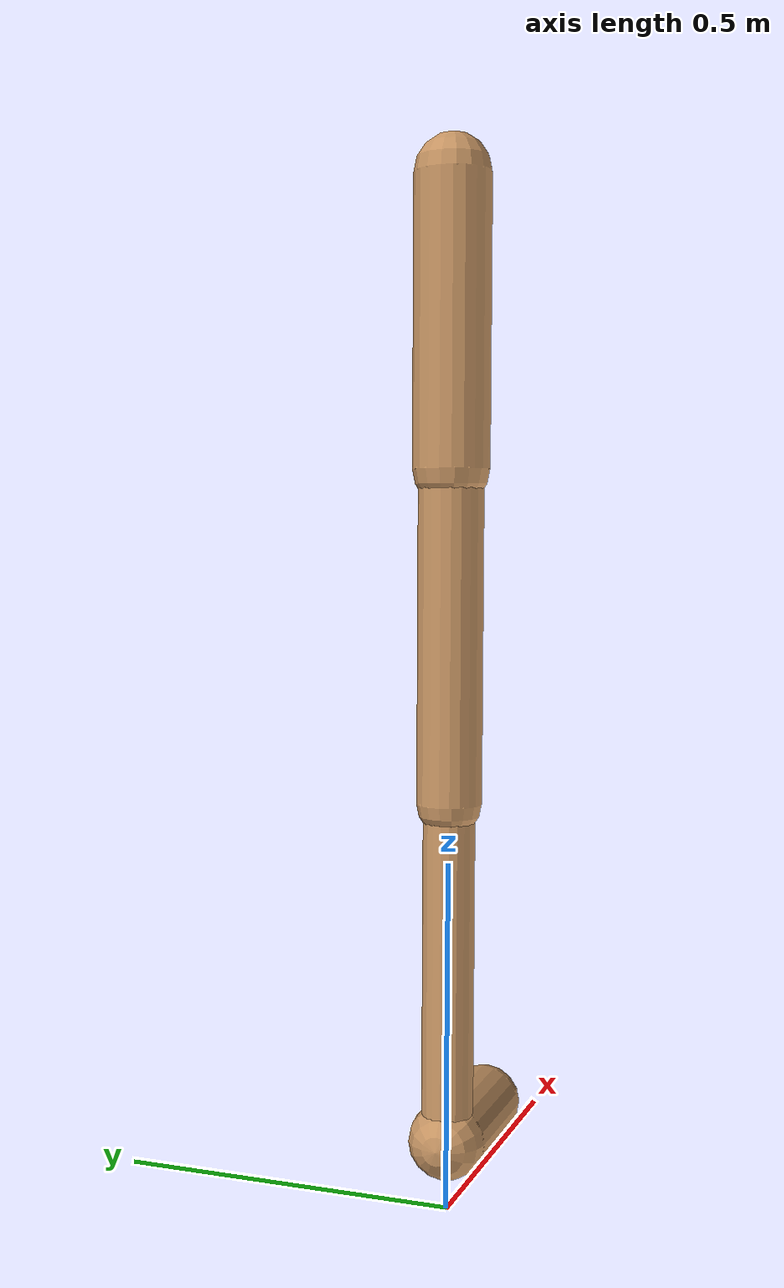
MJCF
<mujoco model="walker2d">
  <compiler angle="degree" coordinate="global" inertiafromgeom="true" />
  <default>
    <joint armature="0.01" damping=".1" limited="true" />
    <geom conaffinity="0" condim="3" contype="1" density="1000" friction="0.8 .1 .1" rgba="0.8 0.6 .4 1" />
  </default>
  <option integrator="RK4" timestep="0.002" />
  <worldbody>

    <body name="torso" pos="0 0 0.03314710677327447">
      <joint armature="0" axis="1 0 0" damping="0" limited="false" name="ignorex" pos="0 0 0" stiffness="0" type="slide" />
      <joint armature="0" axis="0 0 1" damping="0" limited="false" name="ignorez" pos="0 0 0" ref="1.25" stiffness="0" type="slide" />
      <joint armature="0" axis="0 1 0" damping="0" limited="false" name="ignorey" pos="0 0 0" stiffness="0" type="hinge" />
      <geom fromto="0 0 1.45 0 0 1.05" name="torso_geom" size="0.05354936217421983" type="capsule" />
      <body name="thigh">
        <joint axis="0 -1 0" name="thigh_joint" pos="0 0 1.05" range="-150 0" type="hinge" />
        <geom fromto="0.0 0.0 1.05 0.0 0.0 0.58429873889687" name="thigh_geom" size="0.04554437444864612" type="capsule" />
        <body name="leg" pos="0.0 0.0 -0.01570126110312997">
          <joint axis="0 -1 0" name="leg_joint" pos="0 0 0.6" range="-150 0" type="hinge" />
          <geom fromto="0.0 0.0 0.6 0.0 0.0 0.08255415432985555" name="leg_geom" size="0.036435499558916895" type="capsule" />
          <body name="foot" pos="0.0 0.0 -0.017445845670144455">
            <joint axis="0 -1 0" name="foot_joint" pos="0 0 0.1" range="-45 45" type="hinge" />
            <geom fromto="0.0 0.0 0.1 0.18347521349408993 0.0 0.1" name="foot_geom" size="0.05507656714045299" type="capsule" />
          </body>
        </body>
      </body>

      <body name="thigh_left">
        <joint axis="0 -1 0" name="thigh_left_joint" pos="0 0 1.05" range="-150 0" type="hinge" />
        <geom fromto="0.0 0.0 1.05 0.0 0.0 0.58429873889687" name="thigh_left_geom" rgba=".7 .3 .6 1" size="0.04554437444864612" type="capsule" />
        <body name="leg_left" pos="0.0 0.0 -0.01570126110312997">
          <joint axis="0 -1 0" name="leg_left_joint" pos="0 0 0.6" range="-150 0" type="hinge" />
          <geom fromto="0.0 0.0 0.6 0.0 0.0 0.08255415432985555" name="leg_left_geom" rgba=".7 .3 .6 1" size="0.036435499558916895" type="capsule" />
          <body name="foot_left" pos="0.0 0.0 -0.017445845670144455">
            <joint axis="0 -1 0" name="foot_left_joint" pos="0 0 0.1" range="-45 45" type="hinge" />
            <geom fromto="0.0 0.0 0.1 0.18347521349408993 0.0 0.1" name="foot_left_geom" rgba=".7 .3 .6 1" size="0.05507656714045299" type="capsule" />
          </body>
        </body>
      </body>
    </body>
  </worldbody>
  <actuator>

    <motor ctrllimited="true" ctrlrange="-1.0 1.0" gear="100" joint="thigh_joint" />
    <motor ctrllimited="true" ctrlrange="-1.0 1.0" gear="100" joint="leg_joint" />
    <motor ctrllimited="true" ctrlrange="-1.0 1.0" gear="100" joint="foot_joint" />
    <motor ctrllimited="true" ctrlrange="-1.0 1.0" gear="100" joint="thigh_left_joint" />
    <motor ctrllimited="true" ctrlrange="-1.0 1.0" gear="100" joint="leg_left_joint" />
    <motor ctrllimited="true" ctrlrange="-1.0 1.0" gear="100" joint="foot_left_joint" />

  </actuator>
</mujoco>
